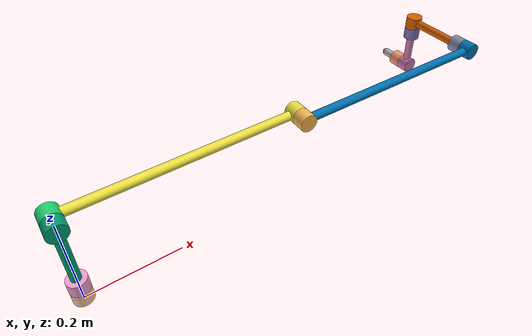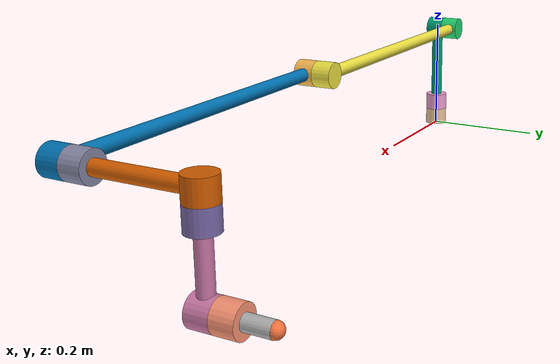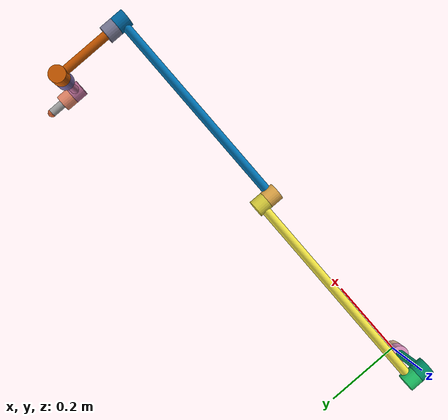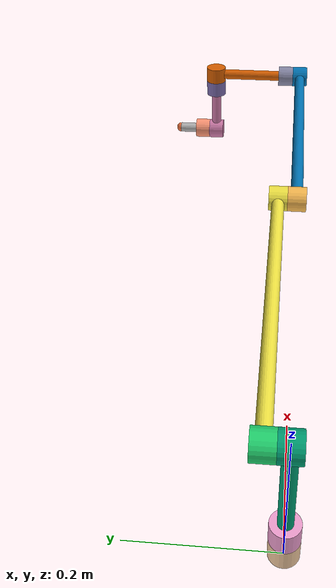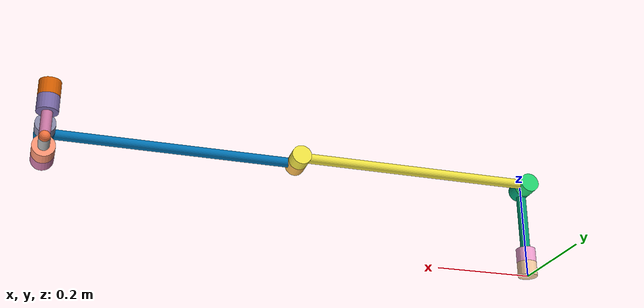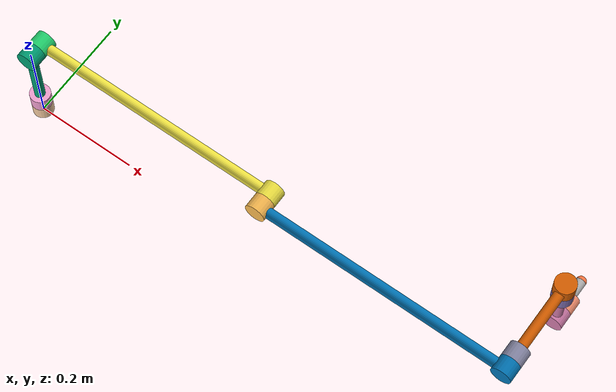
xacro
<?xml version="1.0"?>
<robot name="robot" xmlns:xacro="http://ros.org/wiki/xacro">

        <!--
        A fictitious robot model for testing purposes.
        The kinematics is roughly inspired by the universal robots ur10.
        -->

        <xacro:include filename="$(find cartesian_controller_simulation)/urdf/joint.urdf.xacro"/>

        <!-- ROS2 control interfaces -->
        <ros2_control name="cartesian_controller_simulation" type="system">
                <xacro:joint_interface name="joint1" p="1000" d="0.5" />
                <xacro:joint_interface name="joint2" p="1000" d="0.5" />
                <xacro:joint_interface name="joint3" p="500" d="0.5" />
                <xacro:joint_interface name="joint4" p="100" d="0.5" />
                <xacro:joint_interface name="joint5" p="10" d="0.5" />
                <xacro:joint_interface name="joint6" p="10" d="0.5" />
                <hardware>
                        <plugin>cartesian_controller_simulation/Simulator</plugin>
                        <param name="mujoco_model">$(arg mujoco_model)</param>
                </hardware>
        </ros2_control>

        <!-- joint properties -->
        <xacro:property name="joint_radius" value="0.02" />
        <xacro:property name="joint_length" value="0.03" />

        <!-- link properties -->
        <xacro:property name="link_radius" value="0.01" />
        <xacro:property name="link1_length" value="0.15" />
        <xacro:property name="link2_length" value="0.5" />
        <xacro:property name="link3_length" value="0.5" />
        <xacro:property name="link4_length" value="0.15" />
        <xacro:property name="link5_length" value="0.10" />
        <xacro:property name="link6_length" value="0.05" />

        <!-- colors -->
        <material name="joint_part1">
                <color rgba="0.525 0.713 0.662 1.0"/>
        </material>
        <material name="joint_part2">
                <color rgba="0.462 0.196 0.411 1.0"/>
        </material>
        <material name="base">
                <color rgba="0.956863 0.796078 0.631373 1.0"/>
        </material>
        <material name="tip">
                <color rgba="0.956 0.450 0.243 1.0"/>
        </material>
        <material name="link1">
                <color rgba="0.949 0.631 0.823 1.0"/>
        </material>
        <material name="link2">
                <color rgba="0.133 0.827 0.435 1.0"/>
        </material>
        <material name="link3">
                <color rgba="0.968 0.721 0.313 1.0"/>
        </material>
        <material name="link4">
                <color rgba="0.52549 0.529412 0.647059 1.0"/>
        </material>
        <material name="link5">
                <color rgba="0.478431 0.415686 0.662745 1.0"/>
        </material>
        <material name="link6">
                <color rgba="0.988 0.580 0.450 1.0"/>
        </material>

        <!-- Connect to world -->
        <link name="world" />
        <joint name="world_joint" type="fixed">
                <parent link="world" />
                <child link = "base_link" />
                <origin xyz="0.0 0.0 0.0" rpy="0.0 0.0 0.0" />
        </joint>

        <link name="base_link" >
                <inertial>
                        <origin xyz="0 0 ${joint_length / 2.0}" rpy="0 0 0"/>
                        <mass value="1"/>
                        <inertia ixx="1.0"  ixy="0"  ixz="0" iyy="1.0" iyz="0" izz="1.0" />
                </inertial>
                <visual name="base">
                        <origin xyz="0 0 ${joint_length / 2.0}" rpy="0 0 0" />
                        <geometry>
                                <cylinder length="${joint_length}" radius="${joint_radius}"/>
                        </geometry>
                        <material name="base"/>
                </visual>
        </link>

        <joint name="joint1" type="revolute">
                <parent link="base_link" />
                <child link = "link1" />
                <origin xyz="0.0 0.0 ${3.0 / 2.0 * joint_length}" rpy="0.0 0.0 0.0" />
                <axis xyz="0 0 1" />
                <limit lower="${-2.0 * pi}" upper="${2.0 * pi}" effort="1.0" velocity="10.0"/>
        </joint>

        <link name="link1">
                <inertial>
                        <origin xyz="0 0 ${link1_length / 2.0}" rpy="0 0 0"/>
                        <mass value="1"/>
                        <inertia ixx="1.0"  ixy="0"  ixz="0" iyy="1.0" iyz="0" izz="1.0" />
                </inertial>
                <visual name="joint1">
                        <origin xyz="0 0 0" rpy="0 0 0" />
                        <geometry>
                                <cylinder length="${joint_length}" radius="${joint_radius}"/>
                        </geometry>
                        <material name="link1"/>
                </visual>
                <visual name="link">
                        <origin xyz="0 0 ${link1_length / 2.0}" rpy="0 0 0" />
                        <geometry>
                                <cylinder length="${link1_length}" radius="${link_radius}"/>
                        </geometry>
                </visual>
                <visual name="joint2">
                        <origin xyz="0 0 ${link1_length}" rpy="${pi / 2.0} 0 0" />
                        <geometry>
                                <cylinder length="${joint_length}" radius="${joint_radius}"/>
                        </geometry>
                </visual>
        </link>

        <joint name="joint2" type="revolute">
                <parent link="link1" />
                <child link = "link2" />
                <origin xyz="0.0 ${joint_length} ${link1_length}" rpy="0.0 ${pi / 2.0} 0.0" />
                <axis xyz="0 1 0" />
                <limit lower="${-2.0 * pi}" upper="${2.0 * pi}" effort="1.0" velocity="10.0"/>
        </joint>

        <link name="link2">
                <inertial>
                        <origin xyz="0 0 ${link2_length / 2.0}" rpy="0 0 0"/>
                        <mass value="1"/>
                        <inertia ixx="1.0"  ixy="0"  ixz="0" iyy="1.0" iyz="0" izz="1.0" />
                </inertial>
                <visual name="joint2">
                        <origin xyz="0 0 0" rpy="${pi / 2.0} 0 0" />
                        <geometry>
                                <cylinder length="${joint_length}" radius="${joint_radius}"/>
                        </geometry>
                        <material name="link2"/>
                </visual>
                <visual name="link">
                        <origin xyz="0 0 ${link2_length / 2.0}" rpy="0 0 0" />
                        <geometry>
                                <cylinder length="${link2_length}" radius="${link_radius}"/>
                        </geometry>
                </visual>
                <visual name="joint3">
                        <origin xyz="0 0 ${link2_length}" rpy="${pi / 2.0} 0 0" />
                        <geometry>
                                <cylinder length="${joint_length}" radius="${joint_radius}"/>
                        </geometry>
                </visual>
        </link>

        <joint name="joint3" type="revolute">
                <parent link="link2" />
                <child link = "link3" />
                <origin xyz="0.0 -${joint_length} ${link2_length}" rpy="0.0 0.0 0.0" />
                <axis xyz="0 1 0" />
                <limit lower="${-pi}" upper="${pi}" effort="1.0" velocity="10.0"/>
        </joint>

        <link name="link3">
                <inertial>
                        <origin xyz="0 0 ${link3_length / 2.0}" rpy="0 0 0"/>
                        <mass value="1"/>
                        <inertia ixx="1.0"  ixy="0"  ixz="0" iyy="1.0" iyz="0" izz="1.0" />
                </inertial>
                <visual name="joint3">
                        <origin xyz="0 0 0" rpy="${pi / 2.0} 0 0" />
                        <geometry>
                                <cylinder length="${joint_length}" radius="${joint_radius}"/>
                        </geometry>
                        <material name="link3"/>
                </visual>
                <visual name="link">
                        <origin xyz="0 0 ${link3_length / 2.0}" rpy="0 0 0" />
                        <geometry>
                                <cylinder length="${link3_length}" radius="${link_radius}"/>
                        </geometry>
                </visual>
                <visual name="joint4">
                        <origin xyz="0 0 ${link3_length}" rpy="${pi / 2.0} 0 0" />
                        <geometry>
                                <cylinder length="${joint_length}" radius="${joint_radius}"/>
                        </geometry>
                </visual>
        </link>

        <joint name="joint4" type="revolute">
                <parent link="link3" />
                <child link = "link4" />
                <origin xyz="0.0 ${joint_length} ${link3_length}" rpy="0.0 ${pi / 2.0} 0.0" />
                <axis xyz="0 1 0" />
                <limit lower="${-2.0 * pi}" upper="${2.0 * pi}" effort="1.0" velocity="10.0"/>
        </joint>

        <link name="link4">
                <inertial>
                        <origin xyz="0 0 ${link4_length / 2.0}" rpy="0 0 0"/>
                        <mass value="1"/>
                        <inertia ixx="1.0"  ixy="0"  ixz="0" iyy="1.0" iyz="0" izz="1.0" />
                </inertial>
                <visual name="joint4">
                        <origin xyz="0 0 0" rpy="${pi / 2.0} 0 0" />
                        <geometry>
                                <cylinder length="${joint_length}" radius="${joint_radius}"/>
                        </geometry>
                        <material name="link4"/>
                </visual>
                <visual name="link">
                        <origin xyz="0 ${link4_length / 2.0} 0" rpy="${pi / 2.0} 0 0" />
                        <geometry>
                                <cylinder length="${link4_length}" radius="${link_radius}"/>
                        </geometry>
                </visual>
                <visual name="joint5">
                        <origin xyz="0 ${link4_length} 0" rpy="0 0 0" />
                        <geometry>
                                <cylinder length="${joint_length}" radius="${joint_radius}"/>
                        </geometry>
                </visual>
        </link>

        <joint name="joint5" type="revolute">
                <parent link="link4" />
                <child link = "link5" />
                <origin xyz="0.0 ${link4_length} ${joint_length}" rpy="0.0 0.0 0.0" />
                <axis xyz="0 0 1" />
                <limit lower="${-2.0 * pi}" upper="${2.0 * pi}" effort="1.0" velocity="10.0"/>
        </joint>

        <link name="link5">
                <inertial>
                        <origin xyz="0 0 ${link5_length / 2.0}" rpy="0 0 0"/>
                        <mass value="1"/>
                        <inertia ixx="1.0"  ixy="0"  ixz="0" iyy="1.0" iyz="0" izz="1.0" />
                </inertial>
                <visual name="joint5">
                        <origin xyz="0 0 0" rpy="0 0 0" />
                        <geometry>
                                <cylinder length="${joint_length}" radius="${joint_radius}"/>
                        </geometry>
                        <material name="link5"/>
                </visual>
                <visual name="link">
                        <origin xyz="0 0 ${link5_length / 2.0}" rpy="0 0 0" />
                        <geometry>
                                <cylinder length="${link5_length}" radius="${link_radius}"/>
                        </geometry>
                </visual>
                <visual name="joint6">
                        <origin xyz="0 0 ${link5_length}" rpy="${pi / 2.0} 0 0" />
                        <geometry>
                                <cylinder length="${joint_length}" radius="${joint_radius}"/>
                        </geometry>
                </visual>
        </link>

        <joint name="joint6" type="revolute">
                <parent link="link5" />
                <child link = "link6" />
                <origin xyz="0.0 ${joint_length} ${link5_length}" rpy="0.0 0.0 0.0" />
                <axis xyz="0 1 0" />
                <limit lower="${-2.0 * pi}" upper="${2.0 * pi}" effort="1.0" velocity="10.0"/>
        </joint>

        <link name="link6">
                <inertial>
                        <origin xyz="0 0 ${link6_length / 2.0}" rpy="0 0 0"/>
                        <mass value="1"/>
                        <inertia ixx="1.0"  ixy="0"  ixz="0" iyy="1.0" iyz="0" izz="1.0" />
                </inertial>
                <visual name="joint6">
                        <origin xyz="0 0 0" rpy="${pi / 2.0} 0 0" />
                        <geometry>
                                <cylinder length="${joint_length}" radius="${joint_radius}"/>
                        </geometry>
                        <material name="link6"/>
                </visual>
                <visual name="link">
                        <origin xyz="0 ${link6_length / 2.0} 0" rpy="${-pi / 2.0} 0 0" />
                        <geometry>
                                <cylinder length="${link6_length}" radius="${link_radius}"/>
                        </geometry>
                </visual>
        </link>

        <!-- Attach a sensor link -->
        <joint name="sensor_link_joint" type="fixed">
                <origin xyz="0 ${link6_length / 2.0} 0" rpy="${-pi / 2.0} 0 0"/>
                <parent link="link6"/>
                <child link="sensor_link"/>
        </joint>
        <link name="sensor_link"/>

        <!-- The default end-effector -->
        <joint name="tool0_joint" type="fixed">
                <origin xyz="0 0 ${link6_length / 2.0}" rpy="0 0 0"/>
                <parent link="sensor_link"/>
                <child link="tool0"/>
        </joint>
        <link name="tool0">
                <visual>
                        <origin xyz="0 0 0" rpy="0 0 0" />
                        <geometry>
                                <sphere radius="${link_radius}"/>
                        </geometry>
                        <material name="tip"/>
                </visual>
        </link>

        <!-- Additional links for integration tests. -->
        <joint name="invalid_sensor_link_joint" type="fixed">
                <origin xyz="0 ${link6_length / 2.0} 0" rpy="${-pi / 2.0} 0 0"/>
                <parent link="link6"/>
                <child link="invalid_sensor_link"/>
        </joint>
        <link name="invalid_sensor_link"/>

        <joint name="invalid_compliance_link_joint" type="fixed">
                <origin xyz="0 0 0" rpy="0 0 0"/>
                <parent link="sensor_link"/>
                <child link="invalid_compliance_link"/>
        </joint>
        <link name="invalid_compliance_link"/>

</robot>
